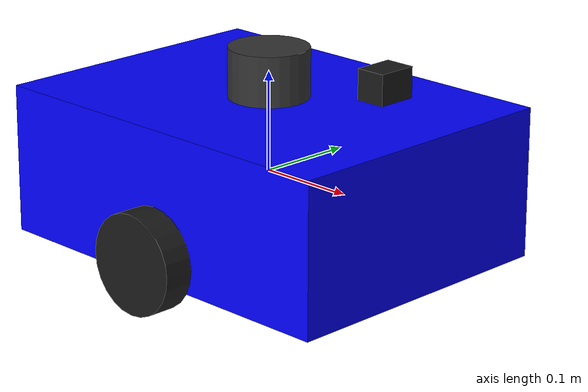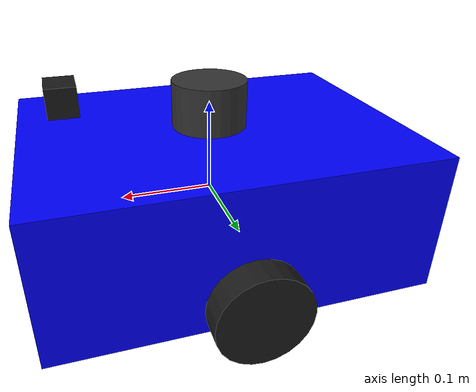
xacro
<?xml version="1.0"?>

<robot xmlns:xacro="http://www.ros.org/wiki/xacro"
       name="warehouse_robot">
  <xacro:include filename="$(find warehouse_robot_description)/urdf/gazebo.xacro"/>

  <!-- Robot Dimensions -->
  <xacro:property name="robot_length" value="0.40"/>
  <xacro:property name="robot_width" value="0.30"/>
  <xacro:property name="robot_height" value="0.15"/>

  <xacro:property name="wheel_radius" value="0.05"/>
  <xacro:property name="wheel_width" value="0.03"/>

  <!-- LiDAR dimensions -->
<xacro:property name="lidar_radius" value="0.04"/>
<xacro:property name="lidar_height" value="0.05"/>

<!-- Camera dimensions -->
<xacro:property name="camera_width" value="0.04"/>
<xacro:property name="camera_height" value="0.03"/>
<xacro:property name="camera_depth" value="0.03"/>

  <!-- ================= BASE ================= -->

  <link name="base_link">

    <visual>
      <geometry>
        <box size="${robot_length} ${robot_width} ${robot_height}"/>
      </geometry>

      <material name="Blue">
        <color rgba="0 0 1 1"/>
      </material>
    </visual>

    <collision>
      <geometry>
        <box size="${robot_length} ${robot_width} ${robot_height}"/>
      </geometry>
    </collision>

    <inertial>
      <mass value="5.0"/>

      <origin xyz="0 0 0"/>

      <inertia
        ixx="0.1"
        iyy="0.1"
        izz="0.1"
        ixy="0"
        ixz="0"
        iyz="0"/>
    </inertial>

  </link>

  <!-- ================= LiDAR ================= -->

<link name="lidar_link">

  <visual>
    <geometry>
      <cylinder radius="${lidar_radius}" length="${lidar_height}"/>
    </geometry>

    <material name="Black">
      <color rgba="0.2 0.2 0.2 1"/>
    </material>
  </visual>

  <collision>
    <geometry>
      <cylinder radius="${lidar_radius}" length="${lidar_height}"/>
    </geometry>
  </collision>

  <inertial>
    <mass value="0.2"/>

    <origin xyz="0 0 0"/>

    <inertia
      ixx="0.0001"
      ixy="0"
      ixz="0"
      iyy="0.0001"
      iyz="0"
      izz="0.0001"/>
  </inertial>

</link>

<!-- ================= Camera ================= -->

<link name="camera_link">

  <visual>
    <geometry>
      <box size="${camera_depth} ${camera_width} ${camera_height}"/>
    </geometry>

    <material name="Black">
      <color rgba="0.1 0.1 0.1 1"/>
    </material>
  </visual>

  <collision>
    <geometry>
      <box size="${camera_depth} ${camera_width} ${camera_height}"/>
    </geometry>
  </collision>

  <inertial>
    <mass value="0.1"/>

    <origin xyz="0 0 0"/>

    <inertia
      ixx="0.0001"
      ixy="0"
      ixz="0"
      iyy="0.0001"
      iyz="0"
      izz="0.0001"/>
  </inertial>

</link>

  <!-- ================= LEFT WHEEL ================= -->

  <link name="left_wheel">

  <visual>
    <origin rpy="1.5708 0 0"/>
    <geometry>
      <cylinder radius="${wheel_radius}" length="${wheel_width}"/>
    </geometry>

    <material name="Black">
      <color rgba="0.1 0.1 0.1 1"/>
    </material>
  </visual>

  <collision>
    <origin rpy="1.5708 0 0"/>
    <geometry>
      <cylinder radius="${wheel_radius}" length="${wheel_width}"/>
    </geometry>
  </collision>

  <inertial>
    <mass value="0.5"/>

    <origin xyz="0 0 0"/>

    <inertia
      ixx="0.001"
      iyy="0.001"
      izz="0.001"
      ixy="0"
      ixz="0"
      iyz="0"/>
  </inertial>

</link>

  <!-- ================= RIGHT WHEEL ================= -->

  <link name="right_wheel">

  <visual>
    <origin rpy="1.5708 0 0"/>
    <geometry>
      <cylinder radius="${wheel_radius}" length="${wheel_width}"/>
    </geometry>

    <material name="Black">
      <color rgba="0.1 0.1 0.1 1"/>
    </material>
  </visual>

  <collision>
    <origin rpy="1.5708 0 0"/>
    <geometry>
      <cylinder radius="${wheel_radius}" length="${wheel_width}"/>
    </geometry>
  </collision>

  <inertial>
    <mass value="0.5"/>

    <origin xyz="0 0 0"/>

    <inertia
      ixx="0.001"
      iyy="0.001"
      izz="0.001"
      ixy="0"
      ixz="0"
      iyz="0"/>
  </inertial>

</link>

  <!-- ================= CASTER ================= -->

  <link name="caster_wheel">

  <visual>
    <geometry>
      <sphere radius="0.03"/>
    </geometry>

    <material name="Gray">
      <color rgba="0.5 0.5 0.5 1"/>
    </material>
  </visual>

  <collision>
    <geometry>
      <sphere radius="0.03"/>
    </geometry>
  </collision>

  <inertial>
    <mass value="0.2"/>

    <origin xyz="0 0 0"/>

    <inertia
      ixx="0.0001"
      iyy="0.0001"
      izz="0.0001"
      ixy="0"
      ixz="0"
      iyz="0"/>
  </inertial>

</link>

  <!-- ================= LEFT JOINT ================= -->

  <joint
      name="left_wheel_joint"
      type="continuous">

      <parent link="base_link"/>

      <child link="left_wheel"/>

      <origin
          xyz="0 0.165 -0.05"
          rpy="0 0 0"/>

      <axis xyz="0 1 0"/>

  </joint>

  <!-- ================= RIGHT JOINT ================= -->

  <joint
      name="right_wheel_joint"
      type="continuous">

      <parent link="base_link"/>

      <child link="right_wheel"/>

      <origin
          xyz="0 -0.165 -0.05"
          rpy="0 0 0"/>

      <axis xyz="0 1 0"/>

  </joint>

  <!-- ================= CASTER JOINT ================= -->

  <joint
      name="caster_joint"
      type="fixed">

      <parent link="base_link"/>

      <child link="caster_wheel"/>

      <origin
          xyz="-0.16 0 -0.075"
          rpy="0 0 0"/>

  </joint>

  <!-- ================= LiDAR JOINT ================= -->

<joint
    name="lidar_joint"
    type="fixed">

    <parent link="base_link"/>

    <child link="lidar_link"/>

    <origin
        xyz="0 0 0.10"
        rpy="0 0 0"/>

</joint>

<!-- ================= Camera Joint ================= -->

<joint
    name="camera_joint"
    type="fixed">

    <parent link="base_link"/>

    <child link="camera_link"/>

    <origin
        xyz="0.15 0 0.12"
        rpy="0 0 0"/>

</joint>

</robot>
